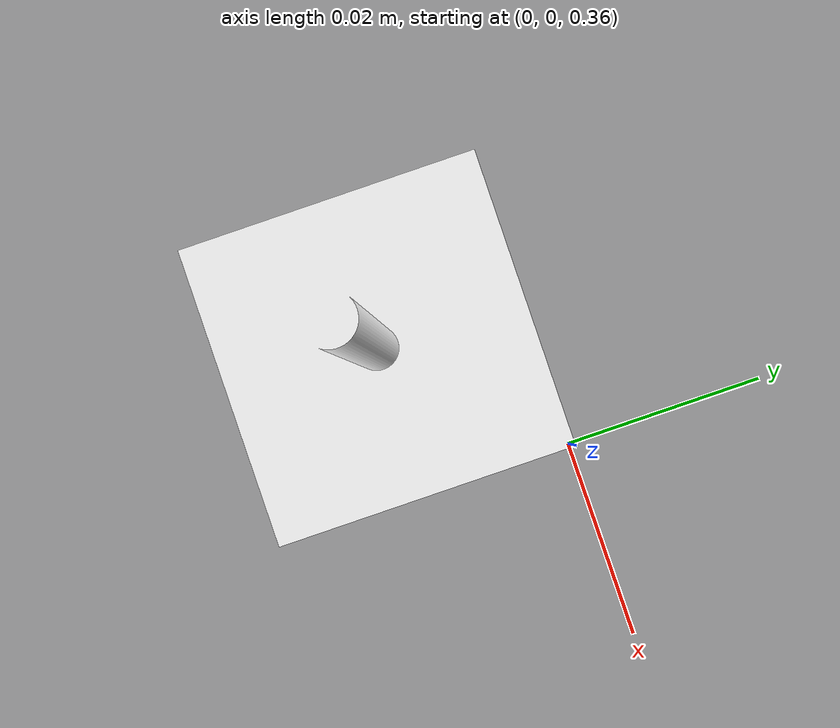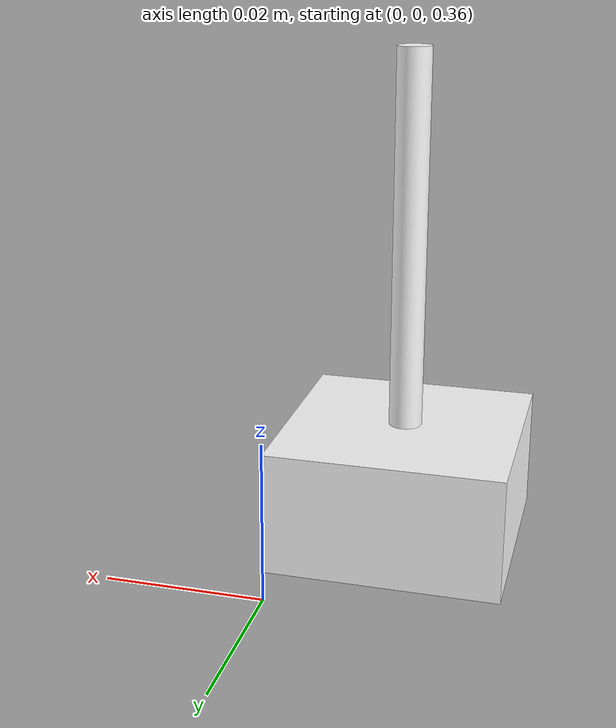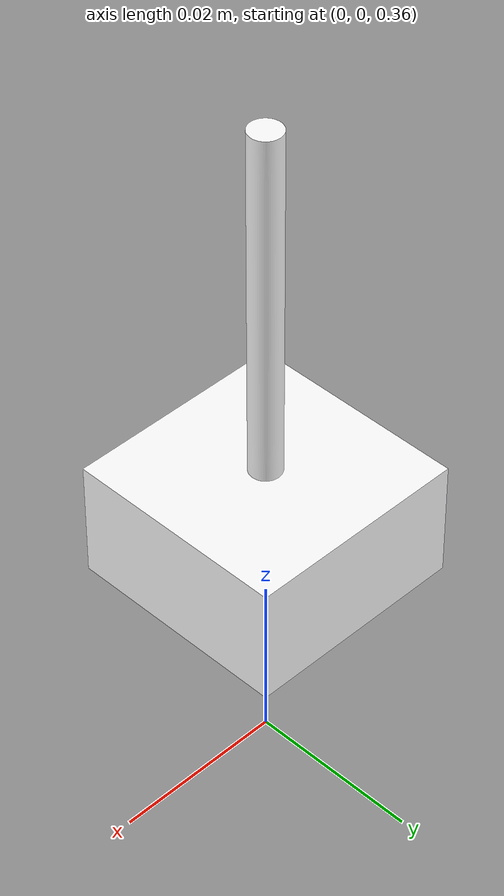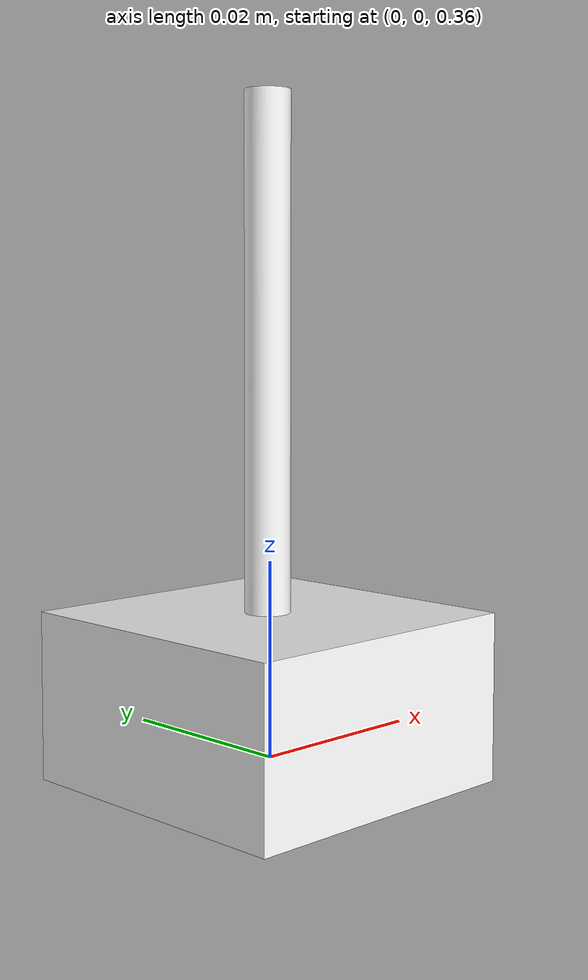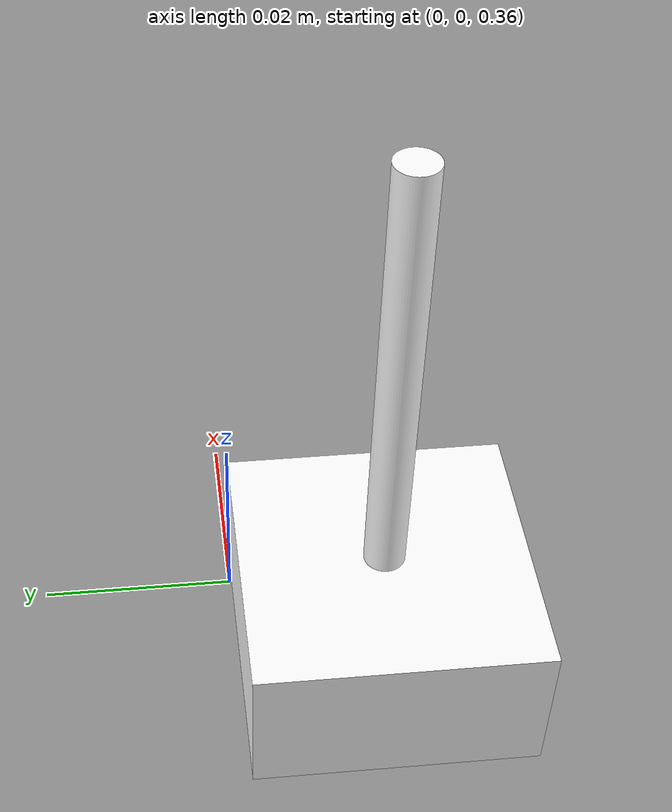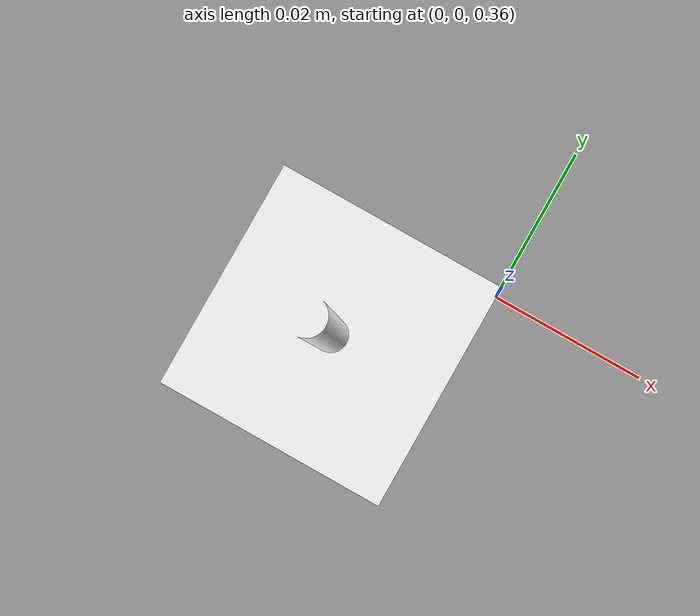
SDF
<?xml version="1.0" ?>
<sdf version="1.5">
  <model name="screw">

    <!-- Model Link  -->
    <link name="base">
      <pose>0 0 0.363725 0 0 3.14159</pose>
      <inertial>
        <mass>0.007</mass>
        <inertia>
          <ixx>0.864</ixx>
          <ixy>0.0</ixy>
          <ixz>0.0</ixz>
          <iyy>0.864</iyy>
          <iyz>0.0</iyz>
          <izz>0.846</izz>
        </inertia>
      </inertial>

      <collision name="collision">
        <geometry>
          <mesh>
            <uri>model://screw/meshes/screw.dae</uri>
          </mesh>
        </geometry>
      </collision>

      <visual name="visual">
        <geometry>
          <mesh>
            <uri>model://screw/meshes/screw.dae</uri>
          </mesh>
        </geometry>

        <material>
          <script>
            <uri>model://screw/materials/textures</uri>
            <uri>model://screw/materials/scripts</uri>
            <name>screw/texture</name>
          </script>

          <shader type = 'vertex'>
            <normal_map>__default__</normal_map>
          </shader>
          <ambient>1 1 1 1</ambient>
          <diffuse>1 1 1 1</diffuse>
          <specular>1 1 1 1</specular>
          <emissive>0 0 0 1</emissive>
        </material>

      </visual>

    </link>
  </model>
</sdf>
